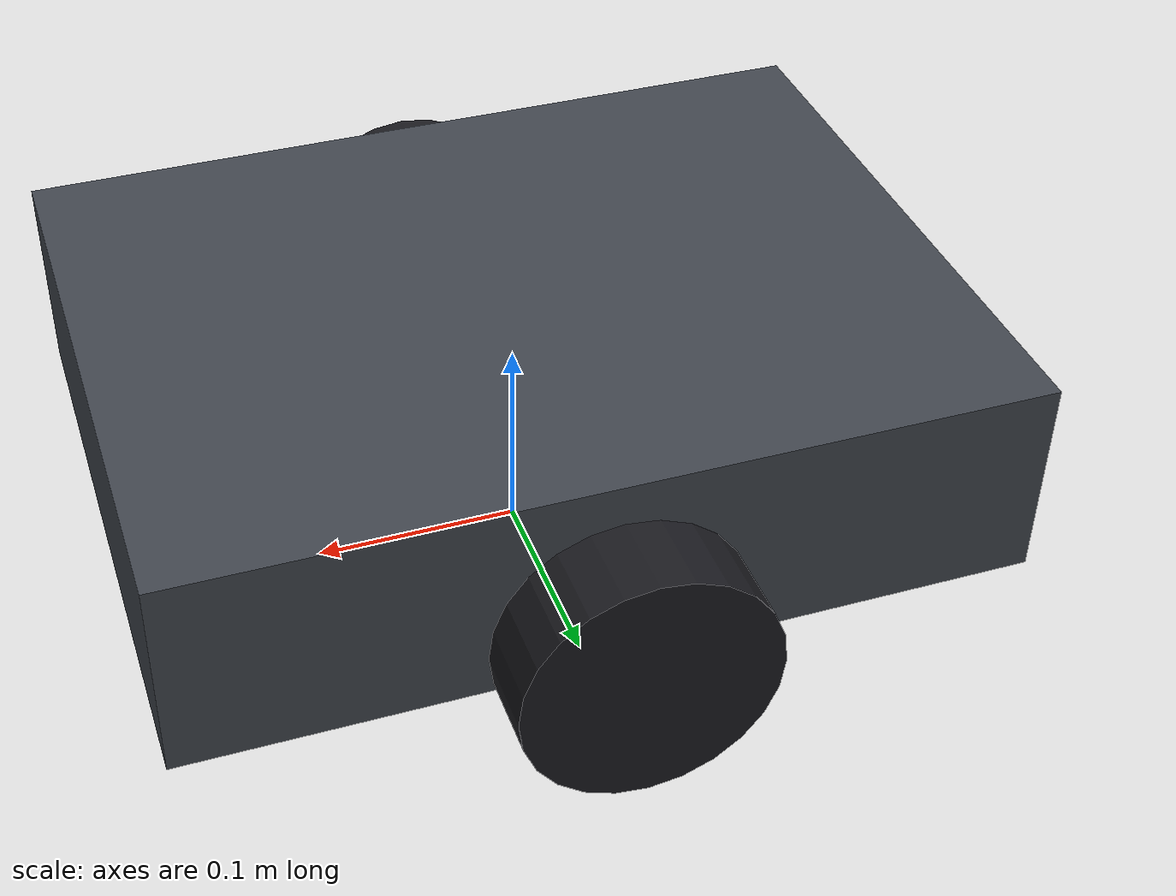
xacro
<?xml version="1.0"?>
<robot xmlns:xacro="http://www.ros.org/wiki/xacro" name="mini_bot">

  <xacro:arg name="namespace" default=""/>
  <xacro:arg name="prefix"    default=""/>
  <xacro:property name="ns"     value="$(arg namespace)"/>
  <xacro:property name="prefix" value="$(arg prefix)"/>

  <xacro:include filename="$(find mini_bot)/urdf/inertials.xacro"/>

  <!-- Medidas del robot, en un solo sitio -->
  <xacro:property name="base_x"      value="0.40"/>
  <xacro:property name="base_y"      value="0.30"/>
  <xacro:property name="base_z"      value="0.10"/>
  <xacro:property name="base_mass"   value="5.0"/>
  <xacro:property name="wheel_r"     value="0.06"/>
  <xacro:property name="wheel_l"     value="0.04"/>
  <xacro:property name="wheel_mass"  value="0.5"/>
  <xacro:property name="wheel_sep"   value="0.34"/>   <!-- separación entre ruedas -->
  <xacro:property name="caster_r"    value="0.03"/>

  <material name="body_grey"><color rgba="0.25 0.27 0.30 1.0"/></material>
  <material name="accent_red"><color rgba="0.78 0.21 0.18 1.0"/></material>
  <material name="dark"><color rgba="0.10 0.10 0.12 1.0"/></material>

  <!-- ============================ GEOMETRÍA (ex01) ============================ -->

  <link name="${prefix}base_footprint"/>

  <link name="${prefix}base_link">
    <visual>
      <origin xyz="0 0 0" rpy="0 0 0"/>
      <geometry><box size="${base_x} ${base_y} ${base_z}"/></geometry>
      <material name="body_grey"/>
    </visual>
    <collision>
      <origin xyz="0 0 0" rpy="0 0 0"/>
      <geometry><box size="${base_x} ${base_y} ${base_z}"/></geometry>
    </collision>
    <xacro:box_inertia m="${base_mass}" x="${base_x}" y="${base_y}" z="${base_z}"/>
  </link>

  <joint name="base_joint" type="fixed">
    <parent link="${prefix}base_footprint"/>
    <child  link="${prefix}base_link"/>
    <origin xyz="0 0 ${wheel_r + base_z/2 - 0.02}" rpy="0 0 0"/>
  </joint>

  <!-- Una macro para las dos ruedas: cambia el lado y el signo de la Y -->
  <xacro:macro name="wheel" params="side reflect">
    <link name="${prefix}${side}_wheel_link">
      <visual>
        <origin xyz="0 0 0" rpy="${pi/2} 0 0"/>
        <geometry><cylinder radius="${wheel_r}" length="${wheel_l}"/></geometry>
        <material name="dark"/>
      </visual>
      <collision>
        <origin xyz="0 0 0" rpy="${pi/2} 0 0"/>
        <geometry><cylinder radius="${wheel_r}" length="${wheel_l}"/></geometry>
      </collision>
      <xacro:cylinder_inertia m="${wheel_mass}" r="${wheel_r}" l="${wheel_l}"/>
    </link>

    <joint name="${side}_wheel_joint" type="continuous">
      <parent link="${prefix}base_link"/>
      <child  link="${prefix}${side}_wheel_link"/>
      <origin xyz="0 ${reflect * wheel_sep/2} ${-base_z/2 + 0.02}" rpy="0 0 0"/>
      <axis xyz="0 1 0"/>
      <dynamics damping="0.05" friction="0.01"/>
    </joint>
  </xacro:macro>

  <xacro:wheel side="left"  reflect="1"/>
  <xacro:wheel side="right" reflect="-1"/>

  <link name="${prefix}caster_link">
    <visual>
      <geometry><sphere radius="${caster_r}"/></geometry>
      <material name="dark"/>
    </visual>
    <collision>
      <geometry><sphere radius="${caster_r}"/></geometry>
    </collision>
    <xacro:sphere_inertia m="0.2" r="${caster_r}"/>
  </link>

  <joint name="caster_joint" type="fixed">
    <parent link="${prefix}base_link"/>
    <child  link="${prefix}caster_link"/>
    <origin xyz="${base_x/2 - 0.05} 0 ${-base_z/2 - caster_r + 0.03}" rpy="0 0 0"/>
  </joint>

  <!-- Rozamiento bajo en la rueda loca, para que no arrastre -->
  <gazebo reference="${prefix}caster_link">
    <mu1>0.0</mu1>
    <mu2>0.0</mu2>
  </gazebo>

  <gazebo reference="${prefix}left_wheel_link">
    <mu1>1.0</mu1>
    <mu2>1.0</mu2>
  </gazebo>
  <gazebo reference="${prefix}right_wheel_link">
    <mu1>1.0</mu1>
    <mu2>1.0</mu2>
  </gazebo>

</robot>

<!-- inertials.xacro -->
<!-- Macros de inercia. No hace falta tocarlas en el taller: se usan tal cual. -->
<robot xmlns:xacro="http://www.ros.org/wiki/xacro">

  <xacro:macro name="box_inertia" params="m x y z">
    <inertial>
      <mass value="${m}"/>
      <inertia ixx="${m*(y*y+z*z)/12.0}" ixy="0.0" ixz="0.0"
               iyy="${m*(x*x+z*z)/12.0}" iyz="0.0"
               izz="${m*(x*x+y*y)/12.0}"/>
    </inertial>
  </xacro:macro>

  <xacro:macro name="cylinder_inertia" params="m r l">
    <inertial>
      <mass value="${m}"/>
      <inertia ixx="${m*(3*r*r+l*l)/12.0}" ixy="0.0" ixz="0.0"
               iyy="${m*(3*r*r+l*l)/12.0}" iyz="0.0"
               izz="${m*r*r/2.0}"/>
    </inertial>
  </xacro:macro>

  <xacro:macro name="sphere_inertia" params="m r">
    <inertial>
      <mass value="${m}"/>
      <inertia ixx="${2.0*m*r*r/5.0}" ixy="0.0" ixz="0.0"
               iyy="${2.0*m*r*r/5.0}" iyz="0.0"
               izz="${2.0*m*r*r/5.0}"/>
    </inertial>
  </xacro:macro>

</robot>
